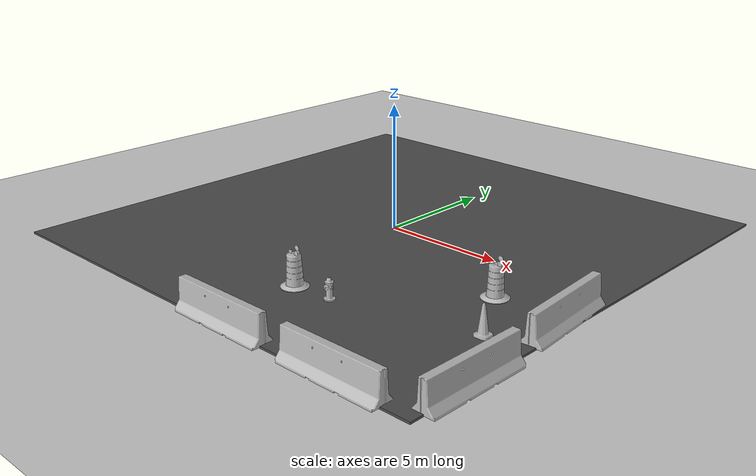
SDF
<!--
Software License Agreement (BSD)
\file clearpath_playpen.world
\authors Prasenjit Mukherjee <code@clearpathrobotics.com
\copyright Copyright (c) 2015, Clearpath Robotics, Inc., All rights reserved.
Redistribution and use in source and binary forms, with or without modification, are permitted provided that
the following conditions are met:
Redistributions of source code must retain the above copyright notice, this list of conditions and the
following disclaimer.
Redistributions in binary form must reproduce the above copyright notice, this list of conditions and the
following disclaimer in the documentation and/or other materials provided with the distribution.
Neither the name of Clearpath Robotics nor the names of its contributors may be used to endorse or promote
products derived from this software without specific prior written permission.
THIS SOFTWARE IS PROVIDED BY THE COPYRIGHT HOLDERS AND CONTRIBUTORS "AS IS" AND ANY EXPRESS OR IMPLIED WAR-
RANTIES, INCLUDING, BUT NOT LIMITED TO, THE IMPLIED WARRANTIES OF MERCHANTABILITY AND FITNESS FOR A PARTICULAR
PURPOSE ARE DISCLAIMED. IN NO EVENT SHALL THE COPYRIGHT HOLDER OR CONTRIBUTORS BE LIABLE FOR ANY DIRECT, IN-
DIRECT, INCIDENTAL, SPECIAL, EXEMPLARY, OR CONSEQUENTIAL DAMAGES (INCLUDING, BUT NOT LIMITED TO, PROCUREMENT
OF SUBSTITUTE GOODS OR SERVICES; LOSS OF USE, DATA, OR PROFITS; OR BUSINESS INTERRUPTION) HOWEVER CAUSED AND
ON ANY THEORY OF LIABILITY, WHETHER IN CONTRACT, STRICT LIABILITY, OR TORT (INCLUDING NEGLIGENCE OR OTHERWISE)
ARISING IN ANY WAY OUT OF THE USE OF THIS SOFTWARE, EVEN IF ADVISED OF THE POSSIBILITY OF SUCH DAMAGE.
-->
<sdf version="1.4">
 <world name="default">
  <model name="ground_plane">
   <static>1</static>
   <link name="link">
    <collision name="collision">
     <geometry><plane><normal>0 0 1</normal><size>100 100</size></plane></geometry>
     <surface><friction><ode><mu>100</mu><mu2>50</mu2></ode></friction></surface>
    </collision>
    <visual name="visual">
     <cast_shadows>0</cast_shadows>
     <geometry><plane><normal>0 0 1</normal><size>100 100</size></plane></geometry>
     <material>
      <script><uri>file://media/materials/scripts/gazebo.material</uri><name>Gazebo/Grey</name></script>
     </material>
    </visual>
    <velocity_decay><linear>0</linear><angular>0</angular></velocity_decay>
   </link>
  </model>
  <model name="jersey_barrier_1">
   <static>1</static>
   <link name="link">
    <visual name="visual">
     <geometry><mesh><uri>model://jersey_barrier/meshes/jersey_barrier.dae</uri></mesh></geometry>
    </visual>
    <collision name="upright">
     <pose>0 0 0.5715 0 -0 0</pose>
     <geometry><box><size>4.06542 0.3063 1.143</size></box></geometry>
    </collision>
    <collision name="base">
     <pose>0 0 0.032258 0 -0 0</pose>
     <geometry><box><size>4.06542 0.8107 0.064516</size></box></geometry>
    </collision>
    <collision name="base2">
     <pose>0 0 0.1 0 -0 0</pose>
     <geometry><box><size>4.06542 0.65 0.1</size></box></geometry>
    </collision>
    <collision name="base3">
     <pose>0 0 0.2 0 -0 0</pose>
     <geometry><box><size>4.06542 0.5 0.1</size></box></geometry>
    </collision>
    <collision name="left-angle">
     <pose>0 -0.224 0.2401 0.9 -0 0</pose>
     <geometry><box><size>4.06542 0.5 0.064516</size></box></geometry>
    </collision>
    <collision name="right-angle">
     <pose>0 0.224 0.2401 -0.9 0 0</pose>
     <geometry><box><size>4.06542 0.5 0.064516</size></box></geometry>
    </collision>
    <velocity_decay><linear>0</linear><angular>0</angular></velocity_decay>
   </link>
   <pose>2 -10 0 0 -0 0</pose>
  </model>
  <model name="jersey_barrier_2">
   <static>1</static>
   <link name="link">
    <visual name="visual">
     <geometry><mesh><uri>model://jersey_barrier/meshes/jersey_barrier.dae</uri></mesh></geometry>
    </visual>
    <collision name="upright">
     <pose>0 0 0.5715 0 -0 0</pose>
     <geometry><box><size>4.06542 0.3063 1.143</size></box></geometry>
    </collision>
    <collision name="base">
     <pose>0 0 0.032258 0 -0 0</pose>
     <geometry><box><size>4.06542 0.8107 0.064516</size></box></geometry>
    </collision>
    <collision name="base2">
     <pose>0 0 0.1 0 -0 0</pose>
     <geometry><box><size>4.06542 0.65 0.1</size></box></geometry>
    </collision>
    <collision name="base3">
     <pose>0 0 0.2 0 -0 0</pose>
     <geometry><box><size>4.06542 0.5 0.1</size></box></geometry>
    </collision>
    <collision name="left-angle">
     <pose>0 -0.224 0.2401 0.9 -0 0</pose>
     <geometry><box><size>4.06542 0.5 0.064516</size></box></geometry>
    </collision>
    <collision name="right-angle">
     <pose>0 0.224 0.2401 -0.9 0 0</pose>
     <geometry><box><size>4.06542 0.5 0.064516</size></box></geometry>
    </collision>
    <velocity_decay><linear>0</linear><angular>0</angular></velocity_decay>
   </link>
   <pose>7 -10 0 0 -0 0</pose>
  </model>
  <model name="jersey_barrier_7">
   <static>1</static>
   <link name="link">
    <visual name="visual">
     <geometry><mesh><uri>model://jersey_barrier/meshes/jersey_barrier.dae</uri></mesh></geometry>
    </visual>
    <collision name="upright">
     <pose>0 0 0.5715 0 -0 0</pose>
     <geometry><box><size>4.06542 0.3063 1.143</size></box></geometry>
    </collision>
    <collision name="base">
     <pose>0 0 0.032258 0 -0 0</pose>
     <geometry><box><size>4.06542 0.8107 0.064516</size></box></geometry>
    </collision>
    <collision name="base2">
     <pose>0 0 0.1 0 -0 0</pose>
     <geometry><box><size>4.06542 0.65 0.1</size></box></geometry>
    </collision>
    <collision name="base3">
     <pose>0 0 0.2 0 -0 0</pose>
     <geometry><box><size>4.06542 0.5 0.1</size></box></geometry>
    </collision>
    <collision name="left-angle">
     <pose>0 -0.224 0.2401 0.9 -0 0</pose>
     <geometry><box><size>4.06542 0.5 0.064516</size></box></geometry>
    </collision>
    <collision name="right-angle">
     <pose>0 0.224 0.2401 -0.9 0 0</pose>
     <geometry><box><size>4.06542 0.5 0.064516</size></box></geometry>
    </collision>
    <velocity_decay><linear>0</linear><angular>0</angular></velocity_decay>
   </link>
   <pose>9.74902 -2.57759 0 0 -0 1.64</pose>
  </model>
  <model name="jersey_barrier_12">
   <static>1</static>
   <link name="link">
    <visual name="visual">
     <geometry><mesh><uri>model://jersey_barrier/meshes/jersey_barrier.dae</uri></mesh></geometry>
    </visual>
    <collision name="upright">
     <pose>0 0 0.5715 0 -0 0</pose>
     <geometry><box><size>4.06542 0.3063 1.143</size></box></geometry>
    </collision>
    <collision name="base">
     <pose>0 0 0.032258 0 -0 0</pose>
     <geometry><box><size>4.06542 0.8107 0.064516</size></box></geometry>
    </collision>
    <collision name="base2">
     <pose>0 0 0.1 0 -0 0</pose>
     <geometry><box><size>4.06542 0.65 0.1</size></box></geometry>
    </collision>
    <collision name="base3">
     <pose>0 0 0.2 0 -0 0</pose>
     <geometry><box><size>4.06542 0.5 0.1</size></box></geometry>
    </collision>
    <collision name="left-angle">
     <pose>0 -0.224 0.2401 0.9 -0 0</pose>
     <geometry><box><size>4.06542 0.5 0.064516</size></box></geometry>
    </collision>
    <collision name="right-angle">
     <pose>0 0.224 0.2401 -0.9 0 0</pose>
     <geometry><box><size>4.06542 0.5 0.064516</size></box></geometry>
    </collision>
    <velocity_decay><linear>0</linear><angular>0</angular></velocity_decay>
   </link>
   <pose>10.0879 -7.62159 0 0 -0 1.56</pose>
  </model>
  <model name="fire_hydrant">
   <static>1</static>
   <link name="link">
    <collision name="collision">
     <geometry><mesh><uri>model://fire_hydrant/meshes/fire_hydrant.dae</uri></mesh></geometry>
    </collision>
    <visual name="visual">
     <geometry><mesh><uri>model://fire_hydrant/meshes/fire_hydrant.dae</uri></mesh></geometry>
    </visual>
    <velocity_decay><linear>0</linear><angular>0</angular></velocity_decay>
   </link>
   <pose>3.18024 -6.51118 0 0 -0 0</pose>
  </model>
  <model name="Construction Barrel">
   <link name="link">
    <inertial>
     <pose>0 0 0.4 0 -0 0</pose>
     <mass>500</mass>
     <inertia><ixx>51.2096</ixx><iyy>51.2096</iyy><izz>25</izz><ixy>0</ixy><ixz>0</ixz><iyz>0</iyz></inertia>
    </inertial>
    <collision name="collision">
     <geometry><mesh><uri>model://construction_barrel/meshes/construction_barrel.dae</uri></mesh></geometry>
    </collision>
    <visual name="visual">
     <geometry><mesh><uri>model://construction_barrel/meshes/construction_barrel.dae</uri></mesh></geometry>
    </visual>
    <velocity_decay><linear>0</linear><angular>0</angular></velocity_decay>
   </link>
   <pose>7.00006 -2.54635 0.049999 4e-06 -0 0.000401</pose>
   <static>0</static>
  </model>
  <model name="Construction Barrel_0">
   <link name="link">
    <inertial>
     <pose>0 0 0.4 0 -0 0</pose>
     <mass>500</mass>
     <inertia><ixx>51.2096</ixx><iyy>51.2096</iyy><izz>25</izz><ixy>0</ixy><ixz>0</ixz><iyz>0</iyz></inertia>
    </inertial>
    <collision name="collision">
     <geometry><mesh><uri>model://construction_barrel/meshes/construction_barrel.dae</uri></mesh></geometry>
    </collision>
    <visual name="visual">
     <geometry><mesh><uri>model://construction_barrel/meshes/construction_barrel.dae</uri></mesh></geometry>
    </visual>
    <velocity_decay><linear>0</linear><angular>0</angular></velocity_decay>
   </link>
   <pose>1.45178 -6.51128 0.049999 -1e-06 -3e-06 3.8e-05</pose>
   <static>0</static>
  </model>
  <model name="asphalt_plane">
   <static>1</static>
   <link name="link">
    <collision name="collision"><geometry><box><size>20 20 0.1</size></box></geometry></collision>
    <visual name="visual">
     <cast_shadows>0</cast_shadows>
     <geometry><box><size>20 20 0.1</size></box></geometry>
     <material>
      <script>
       <uri>model://asphalt_plane/materials/scripts</uri>
       <uri>model://asphalt_plane/materials/textures</uri>
       <name>vrc/asphalt</name>
      </script>
     </material>
    </visual>
    <velocity_decay><linear>0</linear><angular>0</angular></velocity_decay>
   </link>
   <pose>0.076733 -0.110379 0 0 -0 0</pose>
  </model>
  <model name="Construction Cone_1">
   <link name="link">
    <collision name="collision">
     <geometry>
      <mesh><scale>10 10 10</scale><uri>model://construction_cone/meshes/construction_cone.dae</uri></mesh>
     </geometry>
    </collision>
    <visual name="visual">
     <geometry>
      <mesh><scale>10 10 10</scale><uri>model://construction_cone/meshes/construction_cone.dae</uri></mesh>
     </geometry>
    </visual>
    <velocity_decay><linear>0</linear><angular>0</angular></velocity_decay>
    <inertial>
     <inertia><ixx>1</ixx><ixy>0</ixy><ixz>0</ixz><iyy>1</iyy><iyz>0</iyz><izz>1</izz></inertia>
     <mass>1</mass>
    </inertial>
   </link>
   <pose>8.42887 -5 0.049999 0 3e-06 0</pose>
   <static>0</static>
  </model>
 </world>
</sdf>
